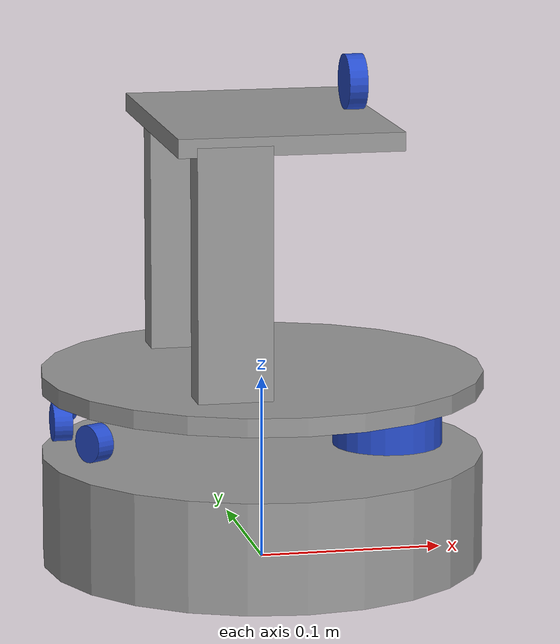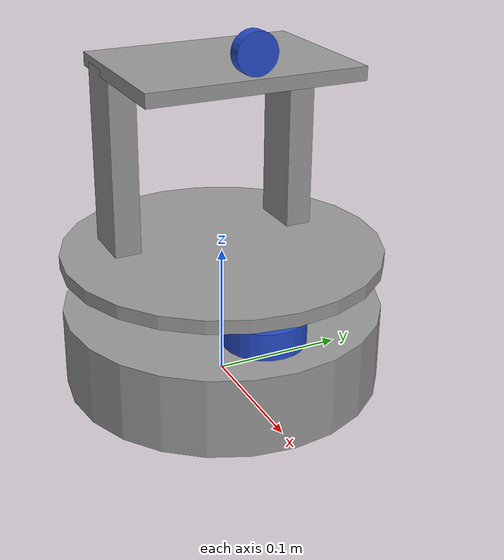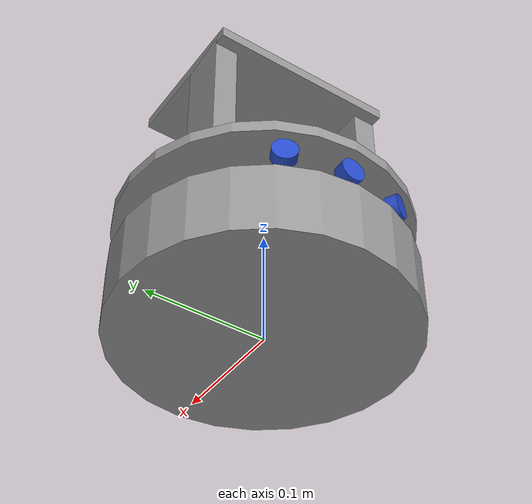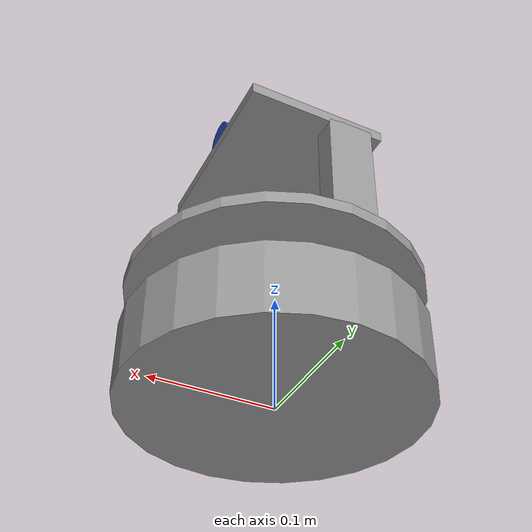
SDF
<?xml version='1.0'?>
<sdf version="1.4">
  <model name="test_robot">
    <link name="base">
      <pose>0 0 0.03 0 0 0</pose>
      <inertial>
        <mass>1.5</mass>
        <inertia>
          <ixx>0.083</ixx>
          <ixy>0.0</ixy>
          <ixz>0.0</ixz>
          <iyy>0.083</iyy>
          <iyz>0.0</iyz>
          <izz>0.083</izz>
        </inertia>
      </inertial>
      <collision name="collision">
        <geometry>
          <cylinder>
            <radius>0.12</radius>
            <length>0.06</length>
          </cylinder>
        </geometry>
        <surface>
          <friction>
            <ode>
              <mu>0.01</mu>
              <mu2>0.01</mu2>
            </ode>
          </friction>
        </surface>
      </collision>
      <visual name="visual">
        <geometry>
          <cylinder>
            <radius>0.12</radius>
            <length>0.06</length>
          </cylinder>
        </geometry>
        <material>
          <script>
            <uri>file://media/materials/scripts/gazebo.material</uri>
            <name>Gazebo/Grey</name>
          </script>
        </material>
      </visual>
    </link>

    <joint name='middle_joint' type='fixed'>
      <parent>base</parent>
      <child>middle</child>
    </joint>

    <link name="middle">
      <pose>0 0 0.1 0 0 0</pose>
      <inertial>
        <mass>0.1</mass>
        <inertia>
          <ixx>0.083</ixx>
          <ixy>0.0</ixy>
          <ixz>0.0</ixz>
          <iyy>0.083</iyy>
          <iyz>0.0</iyz>
          <izz>0.083</izz>
        </inertia>
      </inertial>
      <collision name="collision">
        <geometry>
          <cylinder>
            <radius>0.12</radius>
            <length>0.01</length>
          </cylinder>
        </geometry>
      </collision>
      <visual name="visual">
        <geometry>
          <cylinder>
            <radius>0.12</radius>
            <length>0.01</length>
          </cylinder>
        </geometry>
        <material>
          <script>
            <uri>file://media/materials/scripts/gazebo.material</uri>
            <name>Gazebo/Grey</name>
          </script>
        </material>
      </visual>
    </link>

    <joint name='top_joint' type='fixed'>
      <parent>base</parent>
      <child>top</child>
    </joint>

    <link name="top">
      <pose>0 0 0.24 0 0 0</pose>
      <inertial>
        <mass>0.1</mass>
        <inertia>
          <ixx>0.083</ixx>
          <ixy>0.0</ixy>
          <ixz>0.0</ixz>
          <iyy>0.083</iyy>
          <iyz>0.0</iyz>
          <izz>0.083</izz>
        </inertia>
      </inertial>
      <collision name="collision">
        <geometry>
          <box>
            <size>0.12 0.16 0.01</size>
          </box>
        </geometry>
      </collision>
      <visual name="visual">
        <geometry>
          <box>
            <size>0.12 0.16 0.01</size>
          </box>
        </geometry>
        <material>
          <script>
            <uri>file://media/materials/scripts/gazebo.material</uri>
            <name>Gazebo/Grey</name>
          </script>
        </material>
      </visual>
    </link>

    <joint name='left_joint' type='fixed'>
      <parent>base</parent>
      <child>left</child>
    </joint>

    <link name="left">
      <pose>-0.03 0.07 0.17 0 0 0</pose>
      <inertial>
        <mass>0.1</mass>
        <inertia>
          <ixx>0.083</ixx>
          <ixy>0.0</ixy>
          <ixz>0.0</ixz>
          <iyy>0.083</iyy>
          <iyz>0.0</iyz>
          <izz>0.083</izz>
        </inertia>
      </inertial>
      <collision name="collision">
        <geometry>
          <box>
            <size>0.04 0.02 0.14</size>
          </box>
        </geometry>
      </collision>
      <visual name="visual">
        <geometry>
          <box>
            <size>0.04 0.02 0.14</size>
          </box>
        </geometry>
        <material>
          <script>
            <uri>file://media/materials/scripts/gazebo.material</uri>
            <name>Gazebo/Grey</name>
          </script>
        </material>
      </visual>
    </link>

    <joint name='right_joint' type='fixed'>
      <parent>base</parent>
      <child>right</child>
    </joint>

    <link name="right">
      <pose>-0.03 -0.07 0.17 0 0 0</pose>
      <inertial>
        <mass>0.1</mass>
        <inertia>
          <ixx>0.083</ixx>
          <ixy>0.0</ixy>
          <ixz>0.0</ixz>
          <iyy>0.083</iyy>
          <iyz>0.0</iyz>
          <izz>0.083</izz>
        </inertia>
      </inertial>
      <collision name="collision">
        <geometry>
          <box>
            <size>0.04 0.02 0.14</size>
          </box>
        </geometry>
      </collision>
      <visual name="visual">
        <geometry>
          <box>
            <size>0.04 0.02 0.14</size>
          </box>
        </geometry>
        <material>
          <script>
            <uri>file://media/materials/scripts/gazebo.material</uri>
            <name>Gazebo/Grey</name>
          </script>
        </material>
      </visual>
    </link>

    <!-- plugins -->

    <plugin name="object_controller" filename="libgazebo_ros_planar_move.so">
      <commandTopic>/cart/cmd_vel</commandTopic>
      <odometryTopic>/cart/odom</odometryTopic>
      <odometryFrame>odom</odometryFrame>
      <odometryRate>20.0</odometryRate>
      <robotBaseFrame>base_link</robotBaseFrame>
    </plugin>

    <plugin name="ground_truth" filename="libgazebo_ros_p3d.so">
      <frameName>map</frameName>
      <bodyName>base</bodyName>
      <topicName>/true_tracker/odom</topicName>
      <updateRate>10.0</updateRate>
    </plugin>

    <joint name='laser_joint' type='fixed'>
      <parent>base</parent>
      <child>laser</child>
    </joint>
    <link name="laser">
      <pose>0.07 0 0.07 0 0 0</pose>
      <inertial>
        <mass>0.05</mass>
        <inertia>
          <ixx>0.083</ixx>
          <ixy>0.0</ixy>
          <ixz>0.0</ixz>
          <iyy>0.083</iyy>
          <iyz>0.0</iyz>
          <izz>0.083</izz>
        </inertia>
      </inertial>
      <collision name="collision">
        <geometry>
          <cylinder>
            <radius>0.03</radius>
            <length>0.02</length>
          </cylinder>
        </geometry>
      </collision>
      <visual name="visual">
        <geometry>
          <cylinder>
            <radius>0.03</radius>
            <length>0.02</length>
          </cylinder>
        </geometry>
        <material>
          <script>
            <uri>file://media/materials/scripts/gazebo.material</uri>
            <name>Gazebo/Blue</name>
          </script>
        </material>
      </visual>
      <sensor type="ray" name="laser_ray">
        <pose>0 0 0 0 0 0</pose>
        <visualize>true</visualize>
        <update_rate>7</update_rate>
        <ray>
          <scan>
            <horizontal>
              <samples>300</samples>
              <resolution>1</resolution>
              <min_angle>-3.141592</min_angle>
              <max_angle>3.141592</max_angle>
            </horizontal>
          </scan>
          <range>
            <min>0.05</min>
            <max>20.0</max>
            <resolution>0.01</resolution>
          </range>
          <noise>
            <type>gaussian</type>
            <mean>0.0</mean>
            <stddev>0.01</stddev>
          </noise>
        </ray>
        <plugin name="gazebo_ros_lidar_controller" filename="libgazebo_ros_laser.so">
          <topicName>/front_laser/scan</topicName>
          <frameName>front_laser_link</frameName>
        </plugin>
      </sensor>
    </link>

    <joint name='camera_joint' type='fixed'>
      <parent>base</parent>
      <child>camera</child>
    </joint>
    <link name="camera">
      <pose>0.05 0 0.26 0 1.5707 0</pose>
      <inertial>
        <mass>0.05</mass>
        <inertia>
          <ixx>0.083</ixx>
          <ixy>0.0</ixy>
          <ixz>0.0</ixz>
          <iyy>0.083</iyy>
          <iyz>0.0</iyz>
          <izz>0.083</izz>
        </inertia>
      </inertial>
      <collision name="collision">
        <geometry>
          <cylinder>
            <radius>0.015</radius>
            <length>0.01</length>
          </cylinder>
        </geometry>
      </collision>
      <visual name="visual">
        <geometry>
          <cylinder>
            <radius>0.015</radius>
            <length>0.01</length>
          </cylinder>
        </geometry>
        <material>
          <script>
            <uri>file://media/materials/scripts/gazebo.material</uri>
            <name>Gazebo/Blue</name>
          </script>
        </material>
      </visual>
      <sensor type="camera" name="head_camera">
        <update_rate>10.0</update_rate>
        <camera>
          <pose>0 0 0 0 -1.5707 0</pose>
          <horizontal_fov>1.3962634</horizontal_fov>
          <image>
            <width>800</width>
            <height>600</height>
            <format>R8G8B8</format>
          </image>
          <clip>
            <near>0.02</near>
            <far>100</far>
          </clip>
          <noise>
            <type>gaussian</type>
            <mean>0.0</mean>
            <stddev>0.007</stddev>
          </noise>
        </camera>
        <plugin name="camera_controller" filename="libgazebo_ros_camera.so">
          <alwaysOn>true</alwaysOn>
          <updateRate>10.0</updateRate>
          <cameraName>head_camera</cameraName>
          <imageTopicName>/head_camera/image_raw</imageTopicName>
          <cameraInfoTopicName>/head_camera/camera_info</cameraInfoTopicName>
          <frameName>head_camera_link</frameName>
          <hackBaseline>0.0</hackBaseline>
          <distortionK1>0.0</distortionK1>
          <distortionK2>0.0</distortionK2>
          <distortionK3>0.0</distortionK3>
          <distortionT1>0.0</distortionT1>
          <distortionT2>0.0</distortionT2>
        </plugin>
      </sensor>
    </link>

    <joint name='sonar0_joint' type='fixed'>
      <parent>base</parent>
      <child>sonar0</child>
    </joint>
    <link name="sonar0">
      <pose>-0.10 0.05 0.08 0 0 2.6415</pose>
      <inertial>
        <mass>0.05</mass>
        <inertia>
          <ixx>0.083</ixx>
          <ixy>0.0</ixy>
          <ixz>0.0</ixz>
          <iyy>0.083</iyy>
          <iyz>0.0</iyz>
          <izz>0.083</izz>
        </inertia>
      </inertial>
      <collision name="collision">
        <pose>0 0 0 0 1.5707 0</pose>
        <geometry>
          <cylinder>
            <radius>0.01</radius>
            <length>0.01</length>
          </cylinder>
        </geometry>
      </collision>
      <visual name="visual">
        <pose>0 0 0 0 1.5707 0</pose>
        <geometry>
          <cylinder>
            <radius>0.01</radius>
            <length>0.01</length>
          </cylinder>
        </geometry>
        <material>
          <script>
            <uri>file://media/materials/scripts/gazebo.material</uri>
            <name>Gazebo/Blue</name>
          </script>
        </material>
      </visual>
      <sensor type="ray" name="sonar">
        <pose>0 0 0 0 0 0</pose>
        <visualize>true</visualize>
        <update_rate>20</update_rate>
        <ray>
          <scan>
            <horizontal>
              <samples>3</samples>
              <resolution>1</resolution>
              <min_angle>-0.05</min_angle>
              <max_angle>0.05</max_angle>
            </horizontal>
            <vertical>
              <samples>3</samples>
              <resolution>1</resolution>
              <min_angle>-0.01</min_angle>
              <max_angle>0.01</max_angle>
            </vertical>
         </scan>
          <range>
            <min>0.05</min>
            <max>2</max>
            <resolution>0.02</resolution>
          </range>
        </ray>
        <plugin filename="libgazebo_ros_range.so" name="gazebo_ros_range">
          <gaussianNoise>0.005</gaussianNoise>
          <alwaysOn>true</alwaysOn>
          <updateRate>10</updateRate>
          <topicName>/sonar0/range</topicName>
          <frameName>sonar0_link</frameName>
          <radiation>ULTRASOUND</radiation>
          <fov>0.1</fov>
        </plugin>
      </sensor>
    </link>

    <joint name='sonar1_joint' type='fixed'>
      <parent>base</parent>
      <child>sonar1</child>
    </joint>
    <link name="sonar1">
      <pose>-0.11 0 0.08 0 0 3.1415</pose>
      <inertial>
        <mass>0.05</mass>
        <inertia>
          <ixx>0.083</ixx>
          <ixy>0.0</ixy>
          <ixz>0.0</ixz>
          <iyy>0.083</iyy>
          <iyz>0.0</iyz>
          <izz>0.083</izz>
        </inertia>
      </inertial>
      <collision name="collision">
        <pose>0 0 0 0 1.5707 0</pose>
        <geometry>
          <cylinder>
            <radius>0.01</radius>
            <length>0.01</length>
          </cylinder>
        </geometry>
      </collision>
      <visual name="visual">
        <pose>0 0 0 0 1.5707 0</pose>
        <geometry>
          <cylinder>
            <radius>0.01</radius>
            <length>0.01</length>
          </cylinder>
        </geometry>
        <material>
          <script>
            <uri>file://media/materials/scripts/gazebo.material</uri>
            <name>Gazebo/Blue</name>
          </script>
        </material>
      </visual>
      <sensor type="ray" name="sonar">
        <pose>0 0 0 0 0 0</pose>
        <visualize>true</visualize>
        <update_rate>20</update_rate>
        <ray>
          <scan>
            <horizontal>
              <samples>3</samples>
              <resolution>1</resolution>
              <min_angle>-0.05</min_angle>
              <max_angle>0.05</max_angle>
            </horizontal>
            <vertical>
              <samples>3</samples>
              <resolution>1</resolution>
              <min_angle>-0.01</min_angle>
              <max_angle>0.01</max_angle>
            </vertical>
         </scan>
          <range>
            <min>0.05</min>
            <max>2</max>
            <resolution>0.02</resolution>
          </range>
        </ray>
        <plugin filename="libgazebo_ros_range.so" name="gazebo_ros_range">
          <gaussianNoise>0.005</gaussianNoise>
          <alwaysOn>true</alwaysOn>
          <updateRate>10</updateRate>
          <topicName>/sonar1/range</topicName>
          <frameName>sonar1_link</frameName>
          <radiation>ULTRASOUND</radiation>
          <fov>0.1</fov>
        </plugin>
      </sensor>
    </link>

    <joint name='sonar2_joint' type='fixed'>
      <parent>base</parent>
      <child>sonar2</child>
    </joint>
    <link name="sonar2">
      <pose>-0.10 -0.05 0.08 0 0 3.6515</pose>
      <inertial>
        <mass>0.05</mass>
        <inertia>
          <ixx>0.083</ixx>
          <ixy>0.0</ixy>
          <ixz>0.0</ixz>
          <iyy>0.083</iyy>
          <iyz>0.0</iyz>
          <izz>0.083</izz>
        </inertia>
      </inertial>
      <collision name="collision">
        <pose>0 0 0 0 1.5707 0</pose>
        <geometry>
          <cylinder>
            <radius>0.01</radius>
            <length>0.01</length>
          </cylinder>
        </geometry>
      </collision>
      <visual name="visual">
        <pose>0 0 0 0 1.5707 0</pose>
        <geometry>
          <cylinder>
            <radius>0.01</radius>
            <length>0.01</length>
          </cylinder>
        </geometry>
        <material>
          <script>
            <uri>file://media/materials/scripts/gazebo.material</uri>
            <name>Gazebo/Blue</name>
          </script>
        </material>
      </visual>
      <sensor type="ray" name="sonar">
        <pose>0 0 0 0 0 0</pose>
        <visualize>true</visualize>
        <update_rate>20</update_rate>
        <ray>
          <scan>
            <horizontal>
              <samples>3</samples>
              <resolution>1</resolution>
              <min_angle>-0.05</min_angle>
              <max_angle>0.05</max_angle>
            </horizontal>
            <vertical>
              <samples>3</samples>
              <resolution>1</resolution>
              <min_angle>-0.01</min_angle>
              <max_angle>0.01</max_angle>
            </vertical>
         </scan>
          <range>
            <min>0.05</min>
            <max>2</max>
            <resolution>0.02</resolution>
          </range>
        </ray>
        <plugin filename="libgazebo_ros_range.so" name="gazebo_ros_range">
          <gaussianNoise>0.005</gaussianNoise>
          <alwaysOn>true</alwaysOn>
          <updateRate>10</updateRate>
          <topicName>/sonar2/range</topicName>
          <frameName>sonar2_link</frameName>
          <radiation>ULTRASOUND</radiation>
          <fov>0.1</fov>
        </plugin>
      </sensor>
    </link>
  </model>
</sdf>
